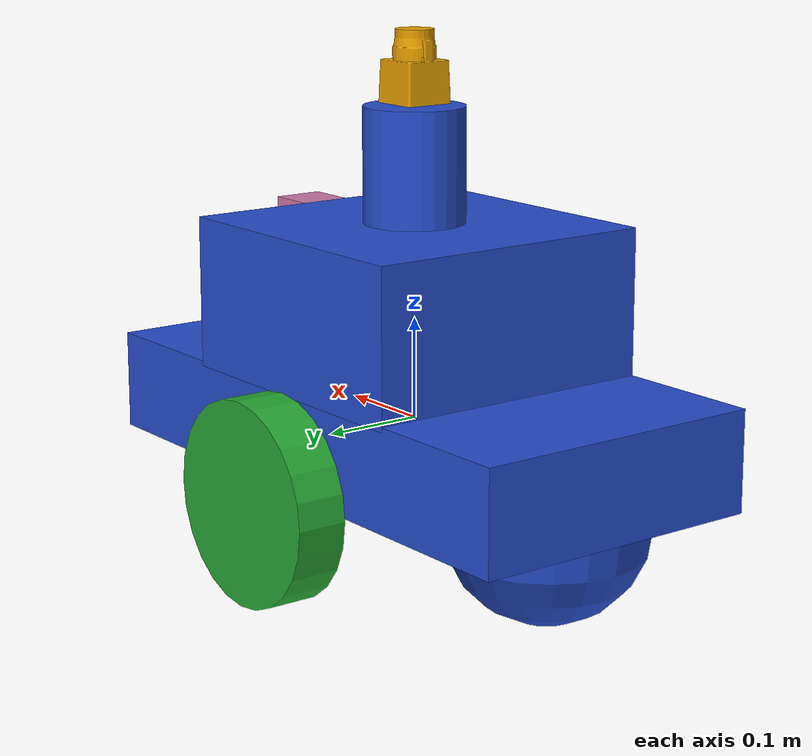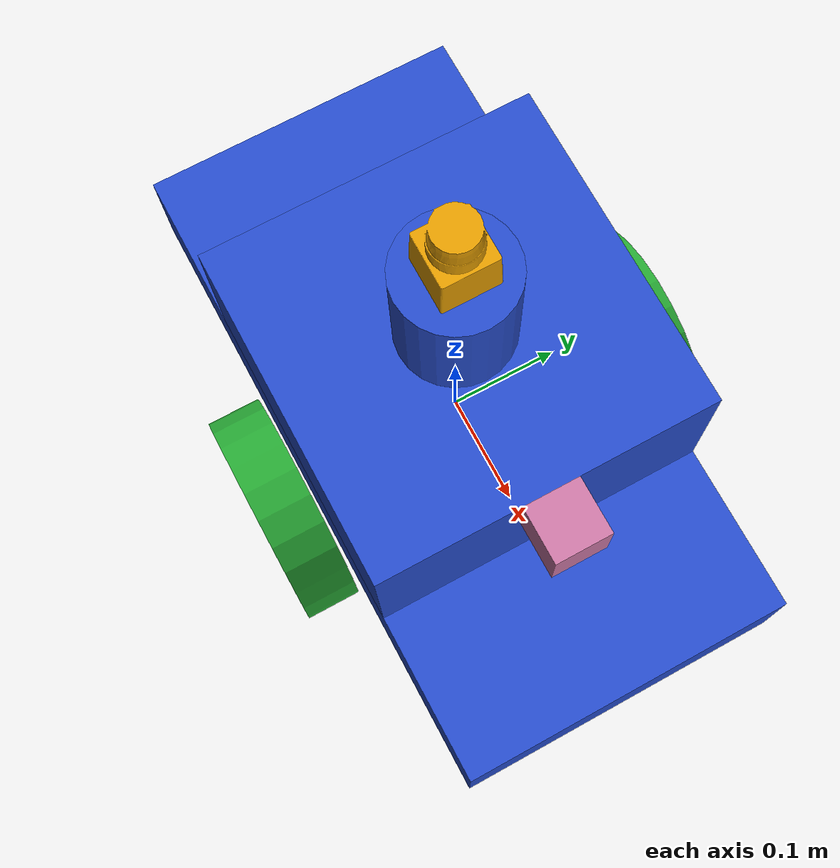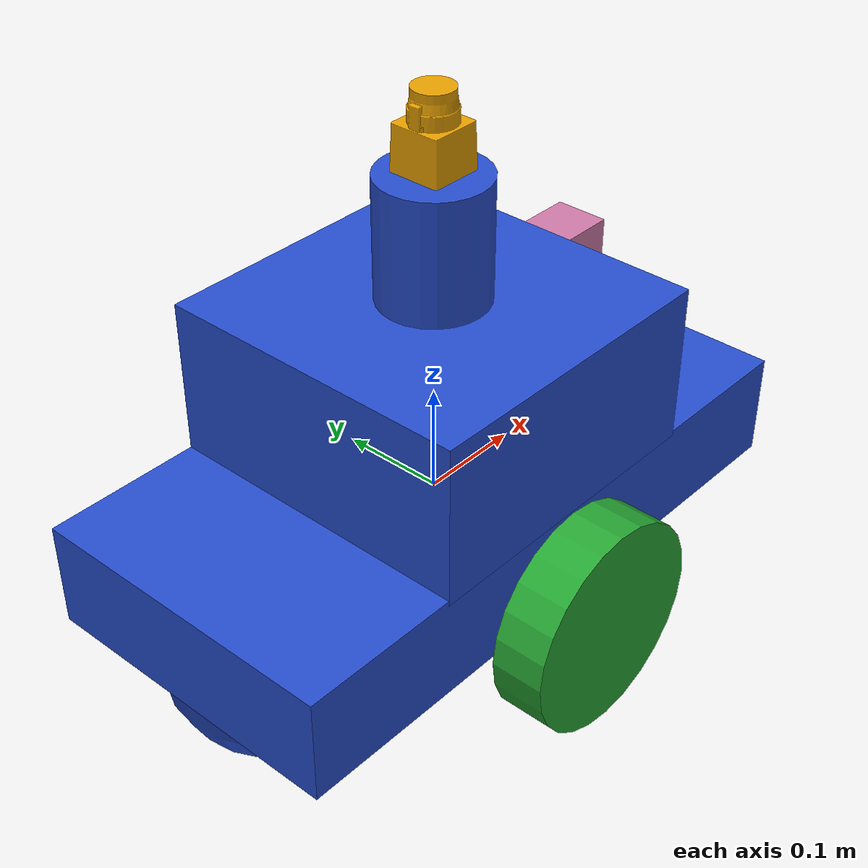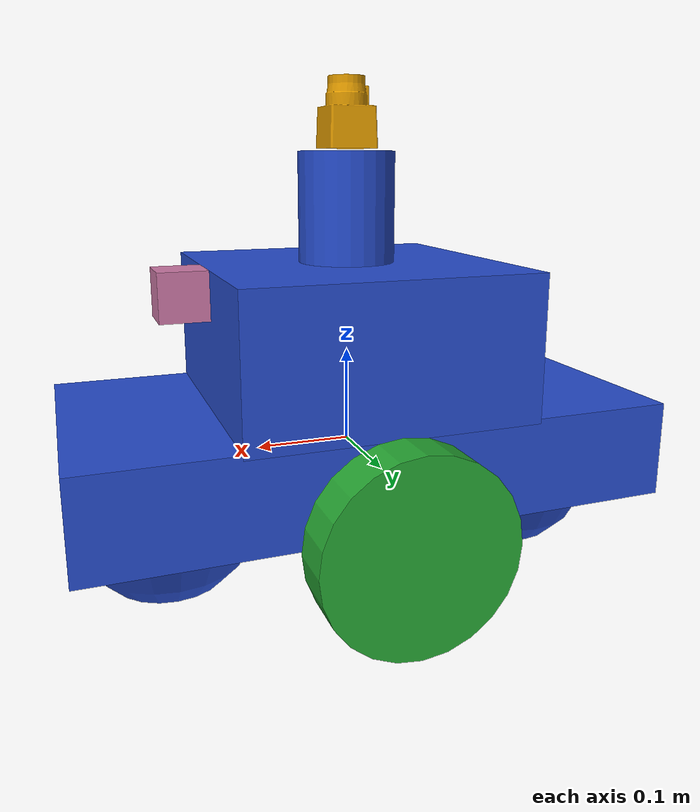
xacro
<?xml version='1.0'?>

<robot name="my_robot" xmlns:xacro="http://www.ros.org/wiki/xacro">
	<xacro:include filename="$(find my_robot)/urdf/carRobot.gazebo" />

	<link name="robot_footprint"></link>

	<joint name="robot_footprint_joint" type="fixed">
		<origin xyz="0 0 0" rpy="0 0 0" />
			<parent link="robot_footprint"/>
		<child link="chassis" />
	</joint>

<!-- WHEELS -->
	<link name='right_wheel_front'>
		<inertial>
			<origin xyz="0 0 0" rpy="0 1.5707 1.5707" />
			<mass value="5.0"/>
			<inertia
			  ixx="0.1" ixy="0" ixz="0"
			  iyy="0.1" iyz="0"
			  izz="0.1"
			  	/>
		</inertial>

		<collision>
			<origin xyz="0 0 0" rpy="0 1.5707 1.5707" />
			<geometry>
		   		<cylinder radius="0.1" length="0.05"/>
			</geometry>
		</collision>

		<visual>
			<origin xyz="0 0 0" rpy="0 1.5707 1.5707" />
			<geometry>
		   		<cylinder radius="0.1" length="0.05"/>
			</geometry>
		</visual>
	</link>

	<link name='left_wheel_front'>
		<inertial>
			<origin xyz="0 0 0" rpy="0 1.5707 1.5707" />
			<mass value="5.0"/>
			<inertia
			  ixx="0.1" ixy="0" ixz="0"
			  iyy="0.1" iyz="0"
			  izz="0.1"
			  	/>
		</inertial>

		<collision>
			<origin xyz="0 0 0" rpy="0 1.5707 1.5707" />
			<geometry>
		   		<cylinder radius="0.1" length="0.05"/>
			</geometry>
		</collision>

		<visual>
			<origin xyz="0 0 0" rpy="0 1.5707 1.5707" />
			<geometry>
		   		<cylinder radius="0.1" length="0.05"/>
			</geometry>
		</visual>
	</link>

<!-- CASSIS -->
	<link name='chassis'>
		<pose>0 0 0.1 0 0 0</pose>

		<inertial>
			<mass value="10.0"/>
			<origin xyz="0 0 0" rpy=" 0 0 0"/>
			<inertia
			  ixx="0.1" ixy="0" ixz="0"
			  iyy="0.1" iyz="0"
			  izz="0.1"
			/>
		</inertial>

		<collision name='collision'>
			<origin xyz="0 0 0" rpy=" 0 0 0"/>
			<geometry>
			<box size=".6 .3 .1"/>
			</geometry>
		</collision>

		<visual name='chassis_visual'>
			<origin xyz="0 0 0" rpy=" 0 0 0"/>
			<geometry>
			<box size=".6 .3 .1"/>
			</geometry>
		</visual>

		<collision name='back_caster_collision'>
			<origin xyz="-0.2 0 -0.05" rpy=" 0 0 0"/>
			<geometry>
			<sphere radius="0.099"/>
			</geometry>
		</collision>

		<visual name='back_caster_visual'>
			<origin xyz="-0.2 0 -0.05" rpy=" 0 0 0"/>
			<geometry>
			<sphere radius="0.099"/>
			</geometry>
		</visual>

		<collision name='front_caster_collision'>
			<origin xyz="0.2 0 -0.05" rpy=" 0 0 0"/>
			<geometry>
			<sphere radius="0.099"/>
			</geometry>
		</collision>

		<visual name='front_caster_visual'>
			<origin xyz="0.2 0 -0.05" rpy=" 0 0 0"/>
			<geometry>
			<sphere radius="0.099"/>
			</geometry>
  		</visual>
	</link>

<!-- CAB -->
	<link name='cab'>
		<pose>0 0 0.1 0 0 0</pose>
		<inertial>
			<mass value="3.0"/>
			<origin xyz="0 0 0" rpy=" 0 0 0"/>
			<inertia
			  ixx="0.1" ixy="0" ixz="0"
			  iyy="0.1" iyz="0"
			  izz="0.1"
			/>
		</inertial>
		<collision name='cab_collision'>
		  <origin xyz="0 0 0" rpy=" 0 0 0"/>
		  <geometry>
			<box size=".3 .3 .15"/>
		  </geometry>
		</collision>
		<visual name='cab_visual'>
		  <origin xyz="0 0 0" rpy=" 0 0 0"/>
		  <geometry>
			<box size=".3 .3 .15"/>
		  </geometry>
		</visual>
	</link>

	<joint type="fixed" name="cab_chassis_joint">
		<origin xyz="0.0 0 0.12" rpy="0 0 0"/>
		<child link="cab"/>
		<parent link="chassis"/>
		<axis xyz="0 1 0" rpy="0 0 0"/>
	</joint>

<!-- Lidar Tower -->
	<link name='LidarTower'>
		<pose>0 0 0.1 0 0 0</pose>
		<inertial>
			<mass value="1.0"/>
			<origin xyz="0 0 0" rpy=" 0 0 0"/>
			<inertia
			  ixx="0.1" ixy="0" ixz="0"
			  iyy="0.1" iyz="0"
			  izz="0.1"
			/>
		</inertial>
		<collision name='LidarTower_collision'>
		  <origin xyz="0 0 0" rpy=" 0 0 0"/>
		  <geometry>
			<cylinder radius="0.05" length="0.12"/>
		  </geometry>
		</collision>
		<visual name='LidarTower_visual'>
		  <origin xyz="0 0 0" rpy=" 0 0 0"/>
		  <geometry>
			<cylinder radius="0.05" length="0.125"/>
		  </geometry>
		</visual>
	</link>

	<joint type="fixed" name="cab_LidarTower_joint">
		<origin xyz="0.0 0 0.125" rpy="0 0 0"/>
		<child link="LidarTower"/>
		<parent link="cab"/>
		<axis xyz="0 1 0" rpy="0 0 0"/>
	</joint>

	<joint type="continuous" name="left_wheel_front_hinge">
		<origin xyz="0.0 0.18 -0.05" rpy="0 0 0"/>
		<child link="left_wheel_front"/>
		<parent link="chassis"/>
		<axis xyz="0 1 0" rpy="0 0 0"/>
		<limit effort="10000" velocity="1000"/>
		<dynamics damping="1.0" friction="1.0"/>
	</joint>

	<joint type="continuous" name="right_wheel_front_hinge">
		<origin xyz="0.0 -0.18 -0.05" rpy="0 0 0"/>
		<child link="right_wheel_front"/>
		<parent link="chassis"/>
		<axis xyz="0 1 0" rpy="0 0 0"/>
		<limit effort="10000" velocity="1000"/>
		<dynamics damping="1.0" friction="1.0"/>
	</joint>

	<link name='camera_link'>
		<inertial>
			<mass value="0.1"/>
				<origin xyz="0.0 0 0" rpy=" 0 0 0"/>
				<inertia
			 		ixx="1e-6" ixy="0" ixz="0"
			  		iyy="1e-6" iyz="0"
			  		izz="1e-6"
				/>
		</inertial>

		<visual>
			<origin xyz="0 0 0" rpy="0 0 0"/>
			<geometry>
				<box size="0.05 0.05 0.05"/>
			</geometry>
		</visual>

			<collision>
			<origin xyz="0 0 0" rpy="0 0 0"/>
			<geometry>
				<box size="0.05 0.05 0.05"/>
			</geometry>
			</collision>
	</link>

	<joint type="fixed" name="camera_joint">
		<origin xyz="0.175 0 0.05" rpy="0 0 0"/>
		<child link="camera_link"/>
		<parent link="cab"/>
		<axis xyz="0 1 0" rpy="0 0 0"/>
	</joint>

    <link name="camera_link_optical">
    </link>

    <joint name="camera_optical_joint" type="fixed">
    <origin xyz="0 0 0" rpy="-1.5707 0 -1.5707"/>
    <parent link="camera_link"/>
    <child link="camera_link_optical"/>
    </joint>

	<link name="hokuyo">
		<inertial>
			<mass value="1e-5"/>
				<origin xyz="0 0 0" rpy=" 0 0 0"/>
				<inertia
			 		ixx="1e-6" ixy="0" ixz="0"
			  		iyy="1e-6" iyz="0"
			  		izz="1e-6"
				/>
		</inertial>

		<visual>
			<origin xyz="0 0 0" rpy="0 0 0"/>
			<geometry>
				<mesh filename="package://my_robot/meshes/hokuyo.dae"/>
			</geometry>
		</visual>

		<collision>
			<origin xyz="0 0 0" rpy="0 0 0"/>
			<geometry>
				<mesh filename="package://my_robot/meshes/hokuyo.dae"/>
			</geometry>
		</collision>

	</link>

	<joint type="fixed" name="hokuyo_joint">
		<origin xyz="0 0 0.1" rpy="0 0 0"/>
		<child link="hokuyo"/>
		<parent link="LidarTower"/>
		<axis xyz="0 1 0" rpy="0 0 0"/>
	</joint>

	<gazebo reference="left_wheel_front">
		<material>Gazebo/Green</material>
	</gazebo>

	<gazebo reference="right_wheel_front">
		<material>Gazebo/Green</material>
	</gazebo>
	<gazebo reference="chassis">
		<material>Gazebo/Blue</material>
	</gazebo>

	<gazebo reference="cab">
		<material>Gazebo/Blue</material>
	</gazebo>

	<gazebo reference="LidarTower">
		<material>Gazebo/Blue</material>
	</gazebo>

	<gazebo reference="camera">
		<material>Gazebo/Red</material>
	</gazebo>

</robot>
